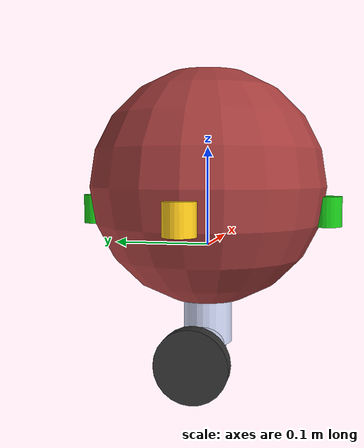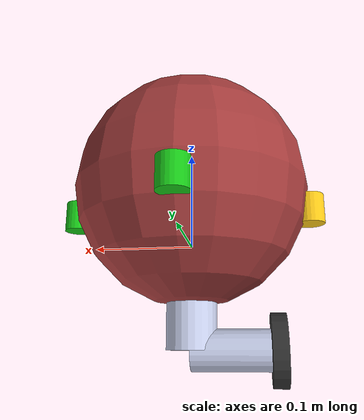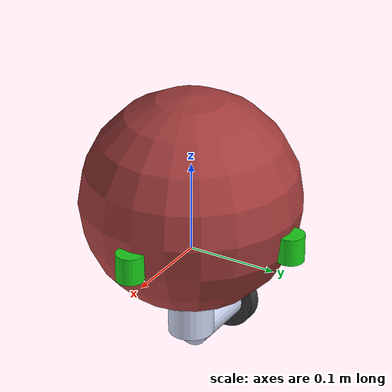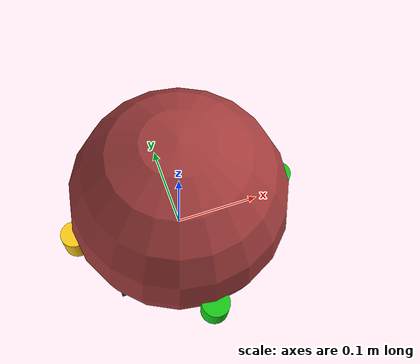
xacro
<?xml version="1.0"?>
<robot xmlns:xacro="http://www.ros.org/wiki/xacro" name="AzimuthV3">

<xacro:arg name="prefix" default=""/>
<xacro:property name="pkg" value="swarm_robot_description"/>

<!-- Azimuth_bot re-design version due to plugins and packages issues -->
<link name="base_link">
  <inertial>
    <origin xyz="0 0 0.06" rpy="0 0 0"/>
    <mass value="1.6608"/>
    <inertia ixx="0.0092313" ixy="0" ixz="0" iyy="0.0092314" iyz="0" izz="0.015172"/>
  </inertial>
  <visual>
    <origin xyz="0 0 0.06" rpy="0 0 0"/>
    <geometry>
      <sphere radius="0.12"/>
    </geometry>
    <material name="base_material">
      <color rgba="0.65 0.24 0.24 1"/>
    </material>
  </visual>
  <collision>
    <origin xyz="0 0 0.06" rpy="0 0 0"/>
    <geometry>
      <sphere radius="0.12"/>
    </geometry>
  </collision>
</link>

<link name="Pod_link">
  <inertial>
    <origin xyz="-0.020969 -0.00046657 -0.070974" rpy="0 0 0"/>
    <mass value="0.14581"/>
    <inertia ixx="4.8483E-05" ixy="-6.6571E-07" ixz="-5.2275E-06" iyy="7.8386E-05" iyz="-1.1631E-07" izz="6.0523E-05"/>
  </inertial>
  <visual name="pod_vertical">
    <origin xyz="0 0 -0.04" rpy="0 0 0"/>
    <geometry>
      <cylinder radius="0.025" length="0.08"/>
    </geometry>
    <material name="pod_material">
      <color rgba="0.79 0.82 0.93 1"/>
    </material>
  </visual>
  <visual name="pod_horizontal">
    <origin xyz="-0.04 0 -0.08" rpy="0 1.5708 0"/>
    <geometry>
      <cylinder radius="0.02" length="0.08"/>
    </geometry>
    <material name="pod_material">
      <color rgba="0.79 0.82 0.93 1"/>
    </material>
  </visual>
  <collision>
    <origin xyz="0 0 -0.04" rpy="0 0 0"/>
    <geometry>
      <cylinder radius="0.03" length="0.12"/>
    </geometry>
  </collision>
</link>

<joint name="Pod_Base_joint" type="continuous">
  <origin xyz="0 0 -0.021064" rpy="0 0 0"/>
  <parent link="base_link"/>
  <child link="Pod_link"/>
  <axis xyz="0 0 1"/>
  <dynamics damping="0.2" friction="0.1"/>
</joint>

<link name="Thruster_link">
  <inertial>
    <origin xyz="0 0 0.007" rpy="0 0 0"/>
    <mass value="0.00098034"/>
    <inertia ixx="4.6405E-08" ixy="0" ixz="0" iyy="4.6394E-08" iyz="0" izz="6.7921E-08"/>
  </inertial>
  <visual>
    <origin xyz="0 0 0" rpy="0 0 0"/>
    <geometry>
      <cylinder radius="0.035" length="0.015"/>
    </geometry>
    <material name="thruster_material">
      <color rgba="0.2 0.2 0.2 1"/>
    </material>
  </visual>
  <collision>
    <origin xyz="0 0 0" rpy="0 0 0"/>
    <geometry>
      <cylinder radius="0.035" length="0.015"/>
    </geometry>
  </collision>
</link>

<joint name="Thruster_Pod_joint" type="continuous">
  <origin xyz="-0.083823 -0.0018651 -0.08" rpy="1.5698 0 -1.5708"/>
  <parent link="Pod_link"/>
  <child link="Thruster_link"/>
  <axis xyz="0 0 1"/>
  <limit effort="100" velocity="100"/>
  <dynamics damping="0.1" friction="0.1"/>
</joint>

<link name="Sensor1_link">
  <inertial>
    <origin xyz="0 0 0" rpy="0 0 0"/>
    <mass value="0.0073631"/>
    <inertia ixx="4.2568E-07" ixy="0" ixz="0" iyy="5.7524E-07" iyz="0" izz="4.2568E-07"/>
  </inertial>
  <visual>
    <origin xyz="0 0 0" rpy="0 0 0"/>
    <geometry>
      <cylinder radius="0.015" length="0.03"/>
    </geometry>
    <material name="sensor_material">
      <color rgba="0.1 0.8 0.1 1"/>
    </material>
  </visual>
  <collision>
    <origin xyz="0 0 0" rpy="0 0 0"/>
    <geometry>
      <cylinder radius="0.015" length="0.03"/>
    </geometry>
  </collision>
</link>

<joint name="Sensor1_Base_joint" type="fixed">
  <origin xyz="0 0.12 0.035776" rpy="0 0 0"/>
  <parent link="base_link"/>
  <child link="Sensor1_link"/>
</joint>

<link name="Sensor2_link">
  <inertial>
    <origin xyz="0 0 0" rpy="0 0 0"/>
    <mass value="0.0073631"/>
    <inertia ixx="4.2568E-07" ixy="0" ixz="0" iyy="5.7524E-07" iyz="0" izz="4.2568E-07"/>
  </inertial>
  <visual>
    <origin xyz="0 0 0" rpy="0 0 0"/>
    <geometry>
      <cylinder radius="0.015" length="0.03"/>
    </geometry>
    <material name="sensor_material">
      <color rgba="0.1 0.8 0.1 1"/>
    </material>
  </visual>
  <collision>
    <origin xyz="0 0 0" rpy="0 0 0"/>
    <geometry>
      <cylinder radius="0.015" length="0.03"/>
    </geometry>
  </collision>
</link>

<joint name="Sensor2_Base_joint" type="fixed">
  <origin xyz="0 -0.12 0.035776" rpy="0 0 0"/>
  <parent link="base_link"/>
  <child link="Sensor2_link"/>
</joint>

<link name="Sensor3_link">
  <inertial>
    <origin xyz="0 0 0" rpy="0 0 0"/>
    <mass value="0.0073631"/>
    <inertia ixx="5.7524E-07" ixy="0" ixz="0" iyy="4.2568E-07" iyz="0" izz="4.2568E-07"/>
  </inertial>
  <visual>
    <origin xyz="0 0 0" rpy="0 0 0"/>
    <geometry>
      <cylinder radius="0.015" length="0.03"/>
    </geometry>
    <material name="sensor_material">
      <color rgba="0.1 0.8 0.1 1"/>
    </material>
  </visual>
  <collision>
    <origin xyz="0 0 0" rpy="0 0 0"/>
    <geometry>
      <cylinder radius="0.015" length="0.03"/>
    </geometry>
  </collision>
</link>

<joint name="Sensor3_Base_joint" type="fixed">
  <origin xyz="0.12 0 0.035776" rpy="0 0 0"/>
  <parent link="base_link"/>
  <child link="Sensor3_link"/>
</joint>

<link name="Sensor4_link">
  <inertial>
    <origin xyz="0 0 0" rpy="0 0 0"/>
    <mass value="0.0073631"/>
    <inertia ixx="5.7524E-07" ixy="0" ixz="0" iyy="4.2568E-07" iyz="0" izz="4.2568E-07"/>
  </inertial>
  <visual>
    <origin xyz="0 0 0" rpy="0 0 0"/>
    <geometry>
      <cylinder radius="0.015" length="0.03"/>
    </geometry>
    <material name="sensor_material">
      <color rgba="1 0.8 0.1 1"/>
    </material>
  </visual>
  <collision>
    <origin xyz="0 0 0" rpy="0 0 0"/>
    <geometry>
      <cylinder radius="0.015" length="0.03"/>
    </geometry>
  </collision>
</link>

<joint name="Sensor4_Base_joint" type="fixed">
  <origin xyz="-0.12 0 0.035776" rpy="0 0 0"/>
  <parent link="base_link"/>
  <child link="Sensor4_link"/>
</joint>

<!-- LASER SENSOR -->
<link name="laser_link">
  <inertial>
    <origin xyz="0 0 0" rpy="0 0 0"/>
    <mass value="0.001"/>
    <inertia ixx="1e-6" ixy="0" ixz="0" iyy="1e-6" iyz="0" izz="1e-6"/>
  </inertial>
  <visual>
    <origin xyz="0 0 0" rpy="0 0 0"/>
    <geometry>
      <cylinder radius="0.02" length="0.02"/>
    </geometry>
    <material name="laser_material">
      <color rgba="0 0 0 1"/>
    </material>
  </visual>
  <collision>
    <origin xyz="0 0 0" rpy="0 0 0"/>
    <geometry>
      <cylinder radius="0.02" length="0.02"/>
    </geometry>
  </collision>
</link>

<joint name="laser_joint" type="fixed">
  <origin xyz="0 0 0.15" rpy="0 0 0"/>
  <parent link="base_link"/>
  <child link="laser_link"/>
</joint>

<!-- GAZEBO PLUGIN FOR LASER (It has some issues sometimes) -->
<gazebo reference="laser_link">
  <material>Gazebo/Black</material>
  <sensor name="laser_sensor" type="ray">
    <pose>0 0 0 0 0 0</pose>
    <visualize>true</visualize>
    <update_rate>10</update_rate>
    <ray>
      <scan>
        <horizontal>
          <samples>180</samples>
          <resolution>1</resolution>
          <min_angle>-1.5708</min_angle>
          <max_angle>1.5708</max_angle>
        </horizontal>
      </scan>
      <range>
        <min>0.1</min>
        <max>5.0</max>
        <resolution>0.01</resolution>
      </range>
      <noise>
        <type>gaussian</type>
        <mean>0.0</mean>
        <stddev>0.01</stddev>
      </noise>
    </ray>
    <plugin name="laser_controller" filename="libgazebo_ros_ray_sensor.so">
      <ros>
        <namespace>/swarm</namespace>
        <remapping>~/out:=laser_scan</remapping>
      </ros>
      <output_type>sensor_msgs/LaserScan</output_type>
      <frame_name>laser_link</frame_name>
    </plugin>
  </sensor>
</gazebo>

<!-- Gazebo Colors -->
<gazebo reference="base_link">
  <material>Gazebo/Red</material>
</gazebo>

<gazebo reference="Pod_link">
  <material>Gazebo/Blue</material>
</gazebo>

<gazebo reference="Thruster_link">
  <material>Gazebo/Grey</material>
</gazebo>

<gazebo reference="Sensor1_link">
  <material>Gazebo/Green</material>
</gazebo>

<gazebo reference="Sensor2_link">
  <material>Gazebo/Green</material>
</gazebo>

<gazebo reference="Sensor3_link">
  <material>Gazebo/Green</material>
</gazebo>

<gazebo reference="Sensor4_link">
  <material>Gazebo/Yellow</material>
</gazebo>

</robot>
